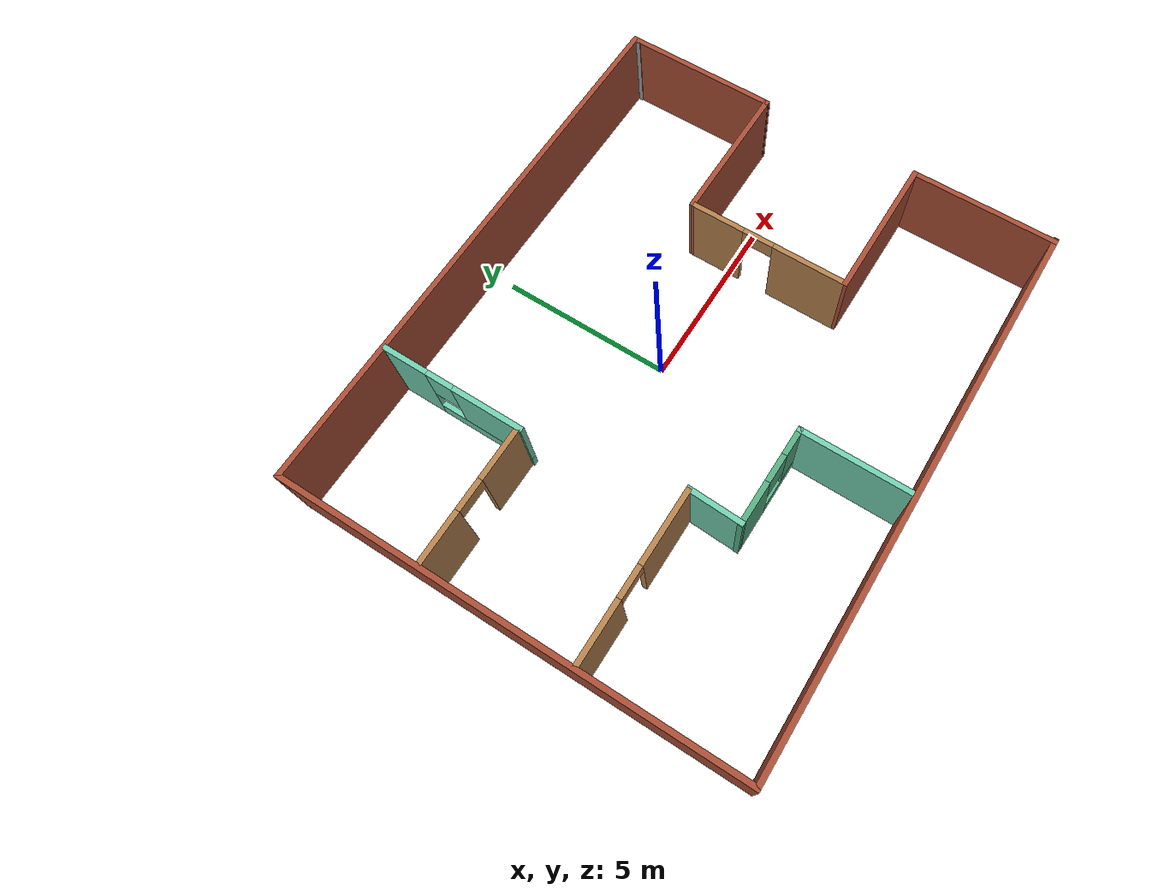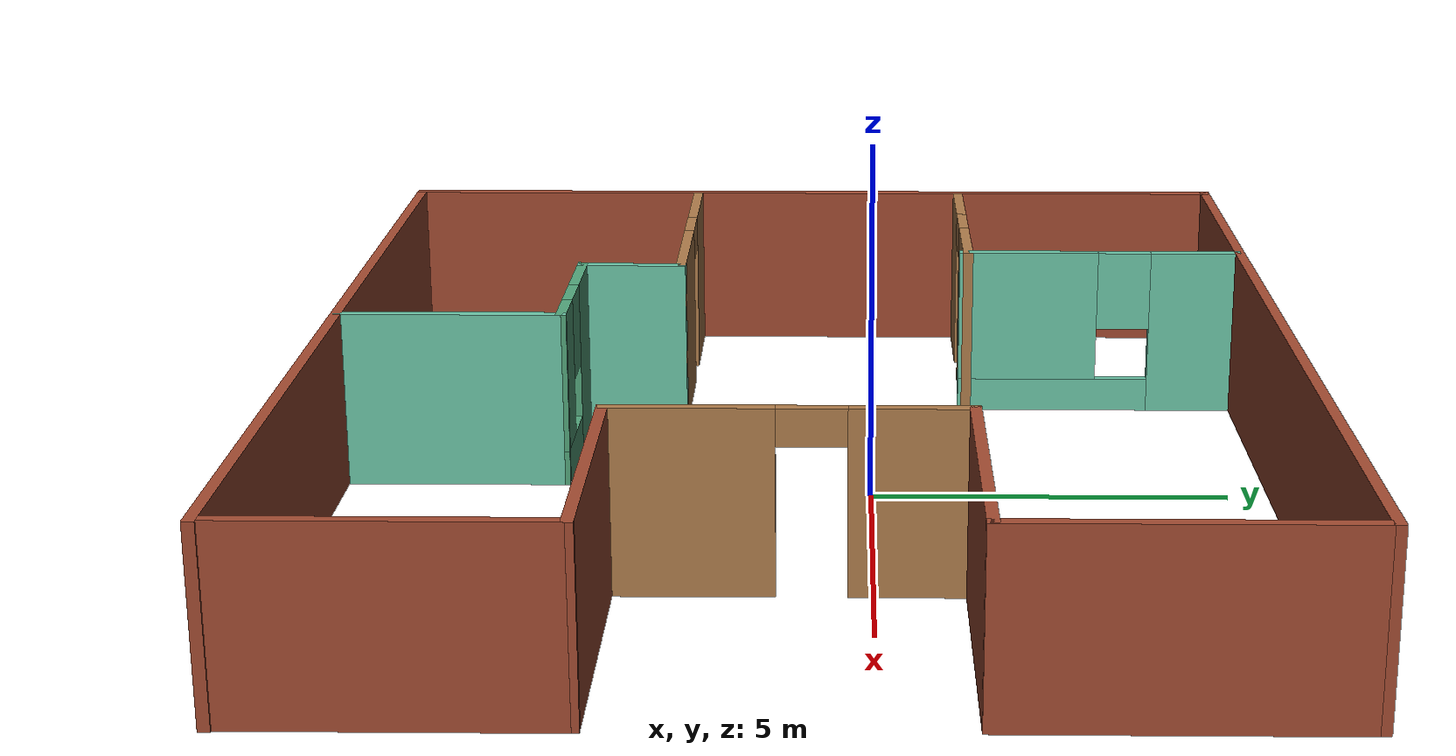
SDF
<?xml version='1.0'?>
<sdf version='1.6'>
  <model name='home'>
    <pose frame=''>-0.140654 -0.916515 0 0 -0 0</pose>
    <link name='Wall_23'>
      <collision name='Wall_23_Collision'>
        <geometry>
          <box>
            <size>15.75 0.15 2.5</size>
          </box>
        </geometry>
        <pose frame=''>0 0 1.25 0 -0 0</pose>
      </collision>
      <visual name='Wall_23_Visual'>
        <pose frame=''>0 0 1.25 0 -0 0</pose>
        <geometry>
          <box>
            <size>15.75 0.15 2.5</size>
          </box>
        </geometry>
        <material>
          <script>
            <uri>file://media/materials/scripts/gazebo.material</uri>
            <name>Gazebo/Bricks</name>
          </script>
          <ambient>1 1 1 1</ambient>
        </material>
        <meta>
          <layer>0</layer>
        </meta>
      </visual>
      <pose frame=''>-0.037313 6.55046 0 0 -0 3.14159</pose>
    </link>
    <link name='Wall_24'>
      <collision name='Wall_24_Collision'>
        <geometry>
          <box>
            <size>13.2375 0.15 2.5</size>
          </box>
        </geometry>
        <pose frame=''>0 0 1.25 0 -0 0</pose>
      </collision>
      <visual name='Wall_24_Visual'>
        <pose frame=''>0 0 1.25 0 -0 0</pose>
        <geometry>
          <box>
            <size>13.2375 0.15 2.5</size>
          </box>
        </geometry>
        <material>
          <script>
            <uri>file://media/materials/scripts/gazebo.material</uri>
            <name>Gazebo/Bricks</name>
          </script>
          <ambient>1 1 1 1</ambient>
        </material>
        <meta>
          <layer>0</layer>
        </meta>
      </visual>
      <pose frame=''>-7.81748 -0.006499 0 0 0 -1.56777</pose>
    </link>
    <link name='Wall_25'>
      <collision name='Wall_25_Collision'>
        <geometry>
          <box>
            <size>15.75 0.15 2.5</size>
          </box>
        </geometry>
        <pose frame=''>0 0 1.25 0 -0 0</pose>
      </collision>
      <visual name='Wall_25_Visual'>
        <pose frame=''>0 0 1.25 0 -0 0</pose>
        <geometry>
          <box>
            <size>15.75 0.15 2.5</size>
          </box>
        </geometry>
        <material>
          <script>
            <uri>file://media/materials/scripts/gazebo.material</uri>
            <name>Gazebo/Bricks</name>
          </script>
          <ambient>1 1 1 1</ambient>
        </material>
        <meta>
          <layer>0</layer>
        </meta>
      </visual>
      <pose frame=''>0.03754 -6.55023 0 0 -0 0</pose>
    </link>
    <link name='Wall_26'>
      <collision name='Wall_26_Collision'>
        <geometry>
          <box>
            <size>4.25 0.15 2.5</size>
          </box>
        </geometry>
        <pose frame=''>0 0 1.25 0 -0 0</pose>
      </collision>
      <visual name='Wall_26_Visual'>
        <pose frame=''>0 0 1.25 0 -0 0</pose>
        <geometry>
          <box>
            <size>4.25 0.15 2.5</size>
          </box>
        </geometry>
        <material>
          <script>
            <uri>file://media/materials/scripts/gazebo.material</uri>
            <name>Gazebo/Bricks</name>
          </script>
          <ambient>1 1 1 1</ambient>
        </material>
        <meta>
          <layer>0</layer>
        </meta>
      </visual>
      <pose frame=''>7.80236 -4.50023 0 0 -0 1.5708</pose>
    </link>
    <link name='Wall_27'>
      <collision name='Wall_27_Collision'>
        <geometry>
          <box>
            <size>4.13753 0.15 2.5</size>
          </box>
        </geometry>
        <pose frame=''>0 0 1.25 0 -0 0</pose>
      </collision>
      <visual name='Wall_27_Visual'>
        <pose frame=''>0 0 1.25 0 -0 0</pose>
        <geometry>
          <box>
            <size>4.13753 0.15 2.5</size>
          </box>
        </geometry>
        <material>
          <script>
            <uri>file://media/materials/scripts/gazebo.material</uri>
            <name>Gazebo/Bricks</name>
          </script>
          <ambient>1 1 1 1</ambient>
        </material>
        <meta>
          <layer>0</layer>
        </meta>
      </visual>
      <pose frame=''>5.8086 -2.44911 0 0 -0 3.14103</pose>
    </link>
    <link name='Wall_28'>
      <pose frame=''>3.81484 -0.132789 0 0 -0 1.5708</pose>
      <visual name='Wall_28_Visual_0'>
        <pose frame=''>-1.27524 0 1.25 0 -0 0</pose>
        <geometry>
          <box>
            <size>2.19953 0.15 2.5</size>
          </box>
        </geometry>
        <material>
          <script>
            <uri>file://media/materials/scripts/gazebo.material</uri>
            <name>Gazebo/Wood</name>
          </script>
          <ambient>1 1 1 1</ambient>
        </material>
        <meta>
          <layer>0</layer>
        </meta>
      </visual>
      <collision name='Wall_28_Collision_0'>
        <geometry>
          <box>
            <size>2.19953 0.15 2.5</size>
          </box>
        </geometry>
        <pose frame=''>-1.27524 0 1.25 0 -0 0</pose>
      </collision>
      <visual name='Wall_28_Visual_1'>
        <pose frame=''>1.54976 0 1.25 0 -0 0</pose>
        <geometry>
          <box>
            <size>1.65047 0.15 2.5</size>
          </box>
        </geometry>
        <material>
          <script>
            <uri>file://media/materials/scripts/gazebo.material</uri>
            <name>Gazebo/Wood</name>
          </script>
          <ambient>1 1 1 1</ambient>
        </material>
        <meta>
          <layer>0</layer>
        </meta>
      </visual>
      <collision name='Wall_28_Collision_1'>
        <geometry>
          <box>
            <size>1.65047 0.15 2.5</size>
          </box>
        </geometry>
        <pose frame=''>1.54976 0 1.25 0 -0 0</pose>
      </collision>
      <visual name='Wall_28_Visual_2'>
        <pose frame=''>0.274529 0 2.25 0 -0 0</pose>
        <geometry>
          <box>
            <size>0.9 0.15 0.5</size>
          </box>
        </geometry>
        <material>
          <script>
            <uri>file://media/materials/scripts/gazebo.material</uri>
            <name>Gazebo/Wood</name>
          </script>
          <ambient>1 1 1 1</ambient>
        </material>
        <meta>
          <layer>0</layer>
        </meta>
      </visual>
      <collision name='Wall_28_Collision_2'>
        <geometry>
          <box>
            <size>0.9 0.15 0.5</size>
          </box>
        </geometry>
        <pose frame=''>0.274529 0 2.25 0 -0 0</pose>
      </collision>
    </link>
    <link name='Wall_29'>
      <collision name='Wall_29_Collision'>
        <geometry>
          <box>
            <size>4.08506 0.15 2.5</size>
          </box>
        </geometry>
        <pose frame=''>0 0 1.25 0 -0 0</pose>
      </collision>
      <visual name='Wall_29_Visual'>
        <pose frame=''>0 0 1.25 0 -0 0</pose>
        <geometry>
          <box>
            <size>4.08506 0.15 2.5</size>
          </box>
        </geometry>
        <material>
          <script>
            <uri>file://media/materials/scripts/gazebo.material</uri>
            <name>Gazebo/Bricks</name>
          </script>
          <ambient>1 1 1 1</ambient>
        </material>
        <meta>
          <layer>0</layer>
        </meta>
      </visual>
      <pose frame=''>5.78236 2.16664 0 0 0 -0.00029</pose>
    </link>
    <link name='Wall_30'>
      <collision name='Wall_30_Collision'>
        <geometry>
          <box>
            <size>4.40163 0.15 2.5</size>
          </box>
        </geometry>
        <pose frame=''>0 0 1.25 0 -0 0</pose>
      </collision>
      <visual name='Wall_30_Visual'>
        <pose frame=''>0 0 1.25 0 -0 0</pose>
        <geometry>
          <box>
            <size>4.40163 0.15 2.5</size>
          </box>
        </geometry>
        <material>
          <script>
            <uri>file://media/materials/scripts/gazebo.material</uri>
            <name>Gazebo/Bricks</name>
          </script>
          <ambient>1 1 1 1</ambient>
        </material>
        <meta>
          <layer>0</layer>
        </meta>
      </visual>
      <pose frame=''>7.76738 4.29189 0 0 -0 1.5708</pose>
    </link>
    <link name='Wall_31'>
      <collision name='Wall_31_Collision'>
        <geometry>
          <box>
            <size>0.15 0.15 2.5</size>
          </box>
        </geometry>
        <pose frame=''>0 0 1.25 0 -0 0</pose>
      </collision>
      <visual name='Wall_31_Visual'>
        <pose frame=''>0 0 1.25 0 -0 0</pose>
        <geometry>
          <box>
            <size>0.15 0.15 2.5</size>
          </box>
        </geometry>
        <material>
          <script>
            <uri>file://media/materials/scripts/gazebo.material</uri>
            <name>Gazebo/Grey</name>
          </script>
          <ambient>1 1 1 1</ambient>
        </material>
        <meta>
          <layer>0</layer>
        </meta>
      </visual>
      <pose frame=''>7.74989 6.4177 0 0 -0 0</pose>
    </link>
    <link name='Wall_32'>
      <collision name='Wall_32_Collision'>
        <geometry>
          <box>
            <size>0.15 0.15 2.5</size>
          </box>
        </geometry>
        <pose frame=''>0 0 1.25 0 -0 0</pose>
      </collision>
      <visual name='Wall_32_Visual'>
        <pose frame=''>0 0 1.25 0 -0 0</pose>
        <geometry>
          <box>
            <size>0.15 0.15 2.5</size>
          </box>
        </geometry>
        <material>
          <script>
            <uri>file://media/materials/scripts/gazebo.material</uri>
            <name>Gazebo/Grey</name>
          </script>
          <ambient>1 1 1 1</ambient>
        </material>
        <meta>
          <layer>0</layer>
        </meta>
      </visual>
      <pose frame=''>7.74989 6.4177 0 0 -0 0</pose>
    </link>
    <link name='Wall_33'>
      <collision name='Wall_33_Collision'>
        <geometry>
          <box>
            <size>0.15 0.15 2.5</size>
          </box>
        </geometry>
        <pose frame=''>0 0 1.25 0 -0 0</pose>
      </collision>
      <visual name='Wall_33_Visual'>
        <pose frame=''>0 0 1.25 0 -0 0</pose>
        <geometry>
          <box>
            <size>0.15 0.15 2.5</size>
          </box>
        </geometry>
        <material>
          <script>
            <uri>file://media/materials/scripts/gazebo.material</uri>
            <name>Gazebo/Grey</name>
          </script>
          <ambient>1 1 1 1</ambient>
        </material>
        <meta>
          <layer>0</layer>
        </meta>
      </visual>
      <pose frame=''>7.74989 6.4177 0 0 -0 0</pose>
    </link>
    <link name='Wall_34'>
      <collision name='Wall_34_Collision'>
        <geometry>
          <box>
            <size>0.15 0.15 2.5</size>
          </box>
        </geometry>
        <pose frame=''>0 0 1.25 0 -0 0</pose>
      </collision>
      <visual name='Wall_34_Visual'>
        <pose frame=''>0 0 1.25 0 -0 0</pose>
        <geometry>
          <box>
            <size>0.15 0.15 2.5</size>
          </box>
        </geometry>
        <material>
          <script>
            <uri>file://media/materials/scripts/gazebo.material</uri>
            <name>Gazebo/Grey</name>
          </script>
          <ambient>1 1 1 1</ambient>
        </material>
        <meta>
          <layer>0</layer>
        </meta>
      </visual>
      <pose frame=''>7.74989 6.4177 0 0 -0 0</pose>
    </link>
    <link name='Wall_39'>
      <pose frame=''>-3.85623 4.42512 0 0 0 -1.5708</pose>
      <visual name='Wall_39_Visual_0'>
        <pose frame=''>-1.45304 0 1.25 0 -0 0</pose>
        <geometry>
          <box>
            <size>1.36241 0.15 2.5</size>
          </box>
        </geometry>
        <material>
          <script>
            <uri>file://media/materials/scripts/gazebo.material</uri>
            <name>Gazebo/Grey</name>
          </script>
          <ambient>0.435294 0.796078 0.67451 1</ambient>
        </material>
        <meta>
          <layer>0</layer>
        </meta>
      </visual>
      <collision name='Wall_39_Collision_0'>
        <geometry>
          <box>
            <size>1.36241 0.15 2.5</size>
          </box>
        </geometry>
        <pose frame=''>-1.45304 0 1.25 0 -0 0</pose>
      </collision>
      <visual name='Wall_39_Visual_1'>
        <pose frame=''>0.681203 0 0.25 0 -0 0</pose>
        <geometry>
          <box>
            <size>2.90607 0.15 0.5</size>
          </box>
        </geometry>
        <material>
          <script>
            <uri>file://media/materials/scripts/gazebo.material</uri>
            <name>Gazebo/Grey</name>
          </script>
          <ambient>0.435294 0.796078 0.67451 1</ambient>
        </material>
        <meta>
          <layer>0</layer>
        </meta>
      </visual>
      <collision name='Wall_39_Collision_1'>
        <geometry>
          <box>
            <size>2.90607 0.15 0.5</size>
          </box>
        </geometry>
        <pose frame=''>0.681203 0 0.25 0 -0 0</pose>
      </collision>
      <visual name='Wall_39_Visual_2'>
        <pose frame=''>1.0812 0 1.5 0 -0 0</pose>
        <geometry>
          <box>
            <size>2.10607 0.15 2</size>
          </box>
        </geometry>
        <material>
          <script>
            <uri>file://media/materials/scripts/gazebo.material</uri>
            <name>Gazebo/Grey</name>
          </script>
          <ambient>0.435294 0.796078 0.67451 1</ambient>
        </material>
        <meta>
          <layer>0</layer>
        </meta>
      </visual>
      <collision name='Wall_39_Collision_2'>
        <geometry>
          <box>
            <size>2.10607 0.15 2</size>
          </box>
        </geometry>
        <pose frame=''>1.0812 0 1.5 0 -0 0</pose>
      </collision>
      <visual name='Wall_39_Visual_3'>
        <pose frame=''>-0.371833 0 1.9 0 -0 0</pose>
        <geometry>
          <box>
            <size>0.8 0.15 1.2</size>
          </box>
        </geometry>
        <material>
          <script>
            <uri>file://media/materials/scripts/gazebo.material</uri>
            <name>Gazebo/Grey</name>
          </script>
          <ambient>0.435294 0.796078 0.67451 1</ambient>
        </material>
        <meta>
          <layer>0</layer>
        </meta>
      </visual>
      <collision name='Wall_39_Collision_3'>
        <geometry>
          <box>
            <size>0.8 0.15 1.2</size>
          </box>
        </geometry>
        <pose frame=''>-0.371833 0 1.9 0 -0 0</pose>
      </collision>
    </link>
    <link name='Wall_40'>
      <pose frame=''>-5.78123 2.41938 0 0 -0 3.14159</pose>
      <visual name='Wall_40_Visual_0'>
        <pose frame=''>-1.19622 0 1.25 0 -0 0</pose>
        <geometry>
          <box>
            <size>1.60755 0.15 2.5</size>
          </box>
        </geometry>
        <material>
          <script>
            <uri>file://media/materials/scripts/gazebo.material</uri>
            <name>Gazebo/Wood</name>
          </script>
          <ambient>1 1 1 1</ambient>
        </material>
        <meta>
          <layer>0</layer>
        </meta>
      </visual>
      <collision name='Wall_40_Collision_0'>
        <geometry>
          <box>
            <size>1.60755 0.15 2.5</size>
          </box>
        </geometry>
        <pose frame=''>-1.19622 0 1.25 0 -0 0</pose>
      </collision>
      <visual name='Wall_40_Visual_1'>
        <pose frame=''>1.25378 0 1.25 0 -0 0</pose>
        <geometry>
          <box>
            <size>1.49245 0.15 2.5</size>
          </box>
        </geometry>
        <material>
          <script>
            <uri>file://media/materials/scripts/gazebo.material</uri>
            <name>Gazebo/Wood</name>
          </script>
          <ambient>1 1 1 1</ambient>
        </material>
        <meta>
          <layer>0</layer>
        </meta>
      </visual>
      <collision name='Wall_40_Collision_1'>
        <geometry>
          <box>
            <size>1.49245 0.15 2.5</size>
          </box>
        </geometry>
        <pose frame=''>1.25378 0 1.25 0 -0 0</pose>
      </collision>
      <visual name='Wall_40_Visual_2'>
        <pose frame=''>0.057554 0 2.25 0 -0 0</pose>
        <geometry>
          <box>
            <size>0.9 0.15 0.5</size>
          </box>
        </geometry>
        <material>
          <script>
            <uri>file://media/materials/scripts/gazebo.material</uri>
            <name>Gazebo/Wood</name>
          </script>
          <ambient>1 1 1 1</ambient>
        </material>
        <meta>
          <layer>0</layer>
        </meta>
      </visual>
      <collision name='Wall_40_Collision_2'>
        <geometry>
          <box>
            <size>0.9 0.15 0.5</size>
          </box>
        </geometry>
        <pose frame=''>0.057554 0 2.25 0 -0 0</pose>
      </collision>
    </link>
    <link name='Wall_42'>
      <pose frame=''>-5.38319 -1.91112 0 0 -0 0.001113</pose>
      <visual name='Wall_42_Visual_0'>
        <pose frame=''>-1.52107 0 1.25 0 -0 0</pose>
        <geometry>
          <box>
            <size>1.76268 0.15 2.5</size>
          </box>
        </geometry>
        <material>
          <script>
            <uri>file://media/materials/scripts/gazebo.material</uri>
            <name>Gazebo/Wood</name>
          </script>
          <ambient>1 1 1 1</ambient>
        </material>
        <meta>
          <layer>0</layer>
        </meta>
      </visual>
      <collision name='Wall_42_Collision_0'>
        <geometry>
          <box>
            <size>1.76268 0.15 2.5</size>
          </box>
        </geometry>
        <pose frame=''>-1.52107 0 1.25 0 -0 0</pose>
      </collision>
      <visual name='Wall_42_Visual_1'>
        <pose frame=''>1.33134 0 1.25 0 -0 0</pose>
        <geometry>
          <box>
            <size>2.14214 0.15 2.5</size>
          </box>
        </geometry>
        <material>
          <script>
            <uri>file://media/materials/scripts/gazebo.material</uri>
            <name>Gazebo/Wood</name>
          </script>
          <ambient>1 1 1 1</ambient>
        </material>
        <meta>
          <layer>0</layer>
        </meta>
      </visual>
      <collision name='Wall_42_Collision_1'>
        <geometry>
          <box>
            <size>2.14214 0.15 2.5</size>
          </box>
        </geometry>
        <pose frame=''>1.33134 0 1.25 0 -0 0</pose>
      </collision>
      <visual name='Wall_42_Visual_2'>
        <pose frame=''>-0.189731 0 2.25 0 -0 0</pose>
        <geometry>
          <box>
            <size>0.9 0.15 0.5</size>
          </box>
        </geometry>
        <material>
          <script>
            <uri>file://media/materials/scripts/gazebo.material</uri>
            <name>Gazebo/Wood</name>
          </script>
          <ambient>1 1 1 1</ambient>
        </material>
        <meta>
          <layer>0</layer>
        </meta>
      </visual>
      <collision name='Wall_42_Collision_2'>
        <geometry>
          <box>
            <size>0.9 0.15 0.5</size>
          </box>
        </geometry>
        <pose frame=''>-0.189731 0 2.25 0 -0 0</pose>
      </collision>
    </link>
    <link name='Wall_43'>
      <collision name='Wall_43_Collision'>
        <geometry>
          <box>
            <size>1.62245 0.15 2.5</size>
          </box>
        </geometry>
        <pose frame=''>0 0 1.25 0 -0 0</pose>
      </collision>
      <visual name='Wall_43_Visual'>
        <pose frame=''>0 0 1.25 0 -0 0</pose>
        <geometry>
          <box>
            <size>1.62245 0.15 2.5</size>
          </box>
        </geometry>
        <material>
          <script>
            <uri>file://media/materials/scripts/gazebo.material</uri>
            <name>Gazebo/Grey</name>
          </script>
          <ambient>0.435294 0.796078 0.67451 1</ambient>
        </material>
        <meta>
          <layer>0</layer>
        </meta>
      </visual>
      <pose frame=''>-3.03144 -2.64435 0 0 0 -1.61041</pose>
    </link>
    <link name='Wall_44'>
      <pose frame=''>-1.7001 -3.39451 0 0 0 -0.010464</pose>
      <visual name='Wall_44_Visual_0'>
        <pose frame=''>-0.811214 0 1.25 0 -0 0</pose>
        <geometry>
          <box>
            <size>1.26872 0.15 2.5</size>
          </box>
        </geometry>
        <material>
          <script>
            <uri>file://media/materials/scripts/gazebo.material</uri>
            <name>Gazebo/Grey</name>
          </script>
          <ambient>0.333333 0.666667 0.498039 1</ambient>
        </material>
        <meta>
          <layer>0</layer>
        </meta>
      </visual>
      <collision name='Wall_44_Collision_0'>
        <geometry>
          <box>
            <size>1.26872 0.15 2.5</size>
          </box>
        </geometry>
        <pose frame=''>-0.811214 0 1.25 0 -0 0</pose>
      </collision>
      <visual name='Wall_44_Visual_1'>
        <pose frame=''>0.634361 0 0.25 0 -0 0</pose>
        <geometry>
          <box>
            <size>1.62243 0.15 0.5</size>
          </box>
        </geometry>
        <material>
          <script>
            <uri>file://media/materials/scripts/gazebo.material</uri>
            <name>Gazebo/Grey</name>
          </script>
          <ambient>0.333333 0.666667 0.498039 1</ambient>
        </material>
        <meta>
          <layer>0</layer>
        </meta>
      </visual>
      <collision name='Wall_44_Collision_1'>
        <geometry>
          <box>
            <size>1.62243 0.15 0.5</size>
          </box>
        </geometry>
        <pose frame=''>0.634361 0 0.25 0 -0 0</pose>
      </collision>
      <visual name='Wall_44_Visual_2'>
        <pose frame=''>1.03436 0 1.5 0 -0 0</pose>
        <geometry>
          <box>
            <size>0.822428 0.15 2</size>
          </box>
        </geometry>
        <material>
          <script>
            <uri>file://media/materials/scripts/gazebo.material</uri>
            <name>Gazebo/Grey</name>
          </script>
          <ambient>0.333333 0.666667 0.498039 1</ambient>
        </material>
        <meta>
          <layer>0</layer>
        </meta>
      </visual>
      <collision name='Wall_44_Collision_2'>
        <geometry>
          <box>
            <size>0.822428 0.15 2</size>
          </box>
        </geometry>
        <pose frame=''>1.03436 0 1.5 0 -0 0</pose>
      </collision>
      <visual name='Wall_44_Visual_3'>
        <pose frame=''>0.223147 0 1.9 0 -0 0</pose>
        <geometry>
          <box>
            <size>0.8 0.15 1.2</size>
          </box>
        </geometry>
        <material>
          <script>
            <uri>file://media/materials/scripts/gazebo.material</uri>
            <name>Gazebo/Grey</name>
          </script>
          <ambient>0.333333 0.666667 0.498039 1</ambient>
        </material>
        <meta>
          <layer>0</layer>
        </meta>
      </visual>
      <collision name='Wall_44_Collision_3'>
        <geometry>
          <box>
            <size>0.8 0.15 1.2</size>
          </box>
        </geometry>
        <pose frame=''>0.223147 0 1.9 0 -0 0</pose>
      </collision>
    </link>
    <link name='Wall_48'>
      <collision name='Wall_48_Collision'>
        <geometry>
          <box>
            <size>3.25 0.15 2.5</size>
          </box>
        </geometry>
        <pose frame=''>0 0 1.25 0 -0 0</pose>
      </collision>
      <visual name='Wall_48_Visual'>
        <pose frame=''>0 0 1.25 0 -0 0</pose>
        <geometry>
          <box>
            <size>3.25 0.15 2.5</size>
          </box>
        </geometry>
        <material>
          <script>
            <uri>file://media/materials/scripts/gazebo.material</uri>
            <name>Gazebo/Grey</name>
          </script>
          <ambient>0.435294 0.796078 0.67451 1</ambient>
        </material>
        <meta>
          <layer>0</layer>
        </meta>
      </visual>
      <pose frame=''>-0.329601 -4.95885 0 0 0 -1.5708</pose>
    </link>
    <static>1</static>
  </model>
</sdf>
